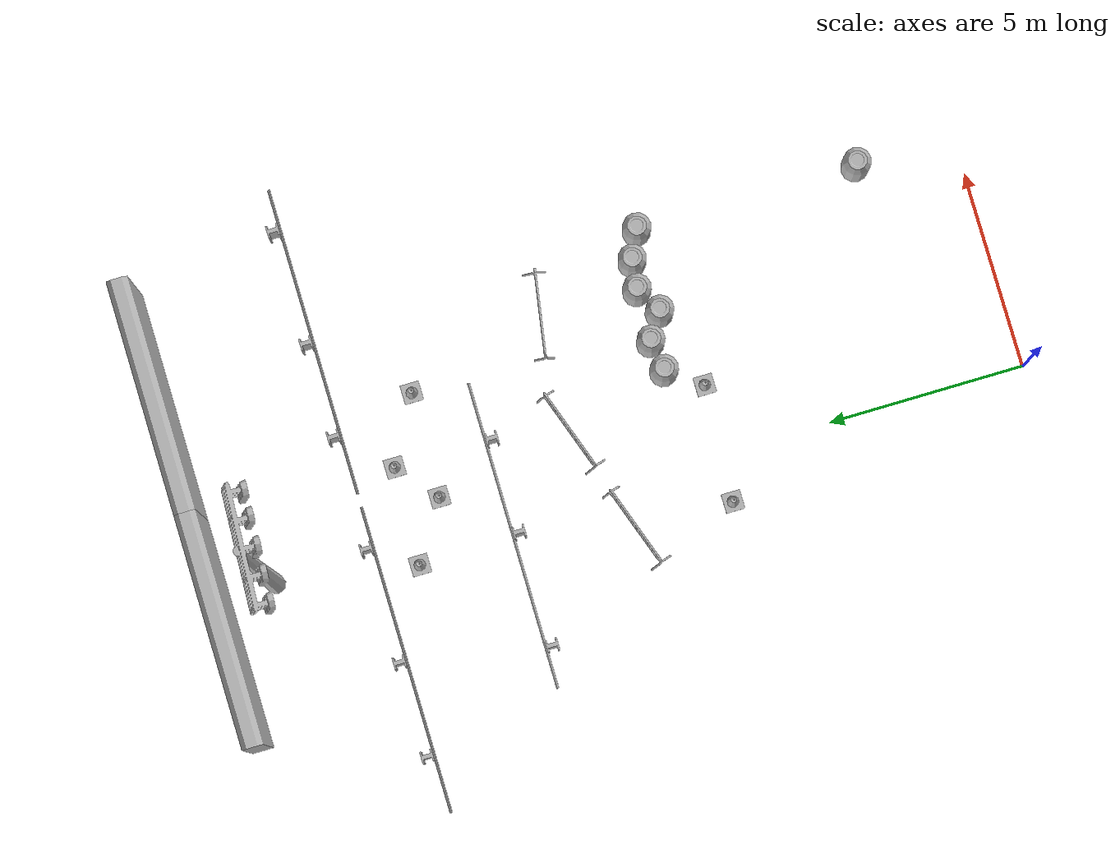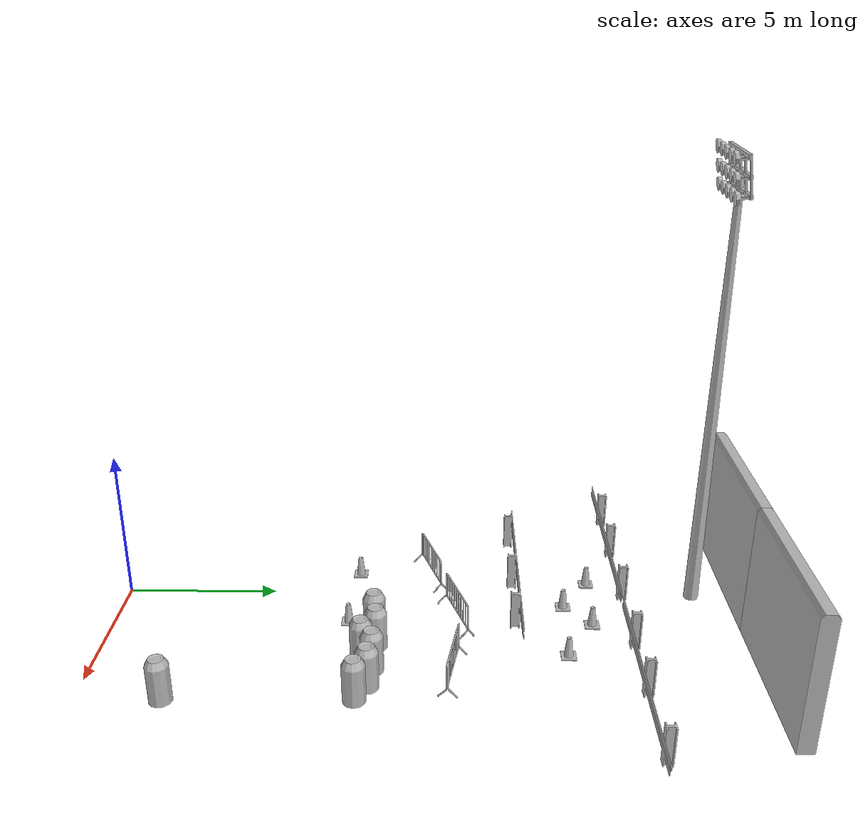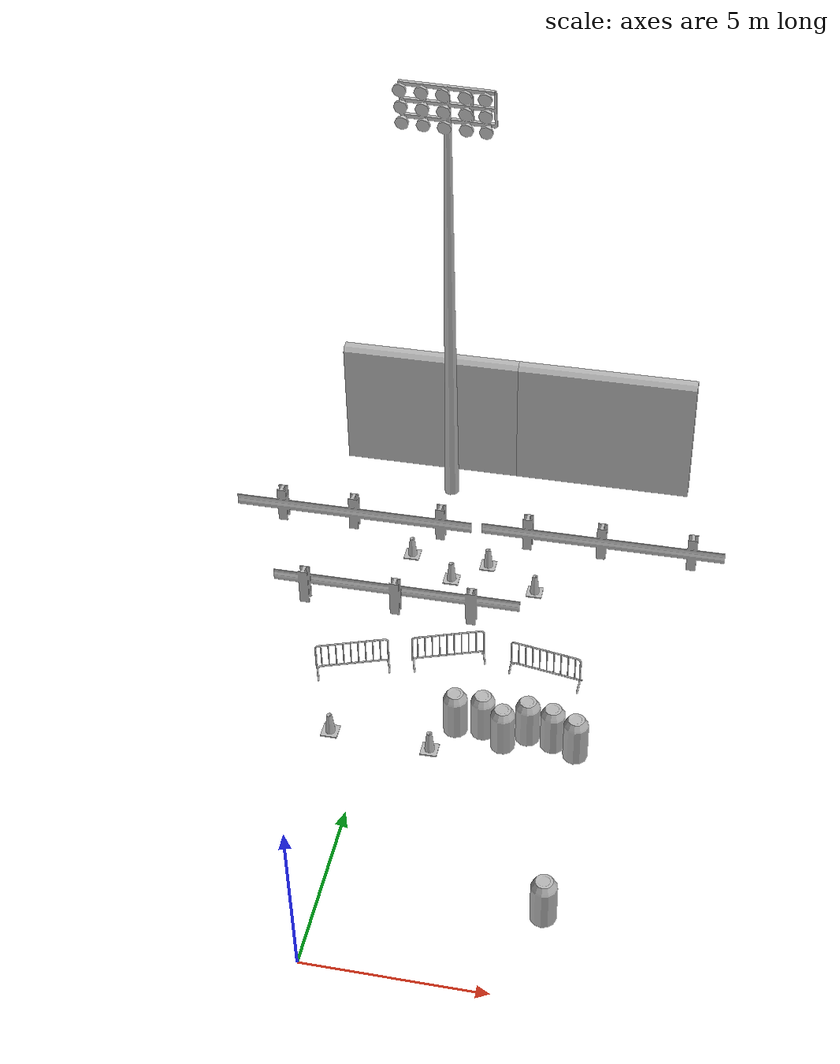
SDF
<sdf version="1.7">
 <world name="default">
  <model name="aws_robomaker_racetrack_CrashworthBucket_01_04">
   <frame name="aws_CrashworthBucket_01::__model__" attached_to="aws_CrashworthBucket_01::body">
    <pose relative_to="__model__">0 0 0 0 -0 0</pose>
   </frame>
   <link name="aws_CrashworthBucket_01::body">
    <pose relative_to="aws_CrashworthBucket_01::__model__">0 0 0 0 -0 0</pose>
    <inertial>
     <mass>5</mass>
     <inertia><ixx>1</ixx><ixy>0</ixy><ixz>0</ixz><iyy>1</iyy><iyz>0</iyz><izz>1</izz></inertia>
    </inertial>
    <visual name="visual">
     <geometry>
      <mesh>
       <uri>file://models/aws_robomaker_racetrack_CrashworthBucket_01/meshes/aws_CrashworthBucket_01_visual.DAE</uri>
      </mesh>
     </geometry>
     <material><shader type="pixel"><normal_map>__default__</normal_map></shader></material>
     <meta><layer>0</layer></meta>
    </visual>
    <collision name="collision_0">
     <geometry>
      <mesh>
       <uri>file://models/aws_robomaker_racetrack_CrashworthBucket_01/meshes/aws_CrashworthBucket_01_collision.DAE</uri>
       <scale>1 1 1</scale>
      </mesh>
     </geometry>
     <surface>
      <friction>
       <ode><mu>1</mu><mu2>1</mu2><fdir1>0 0 0</fdir1><slip1>0</slip1><slip2>0</slip2></ode>
       <torsional>
        <coefficient>1</coefficient>
        <patch_radius>0</patch_radius>
        <surface_radius>0</surface_radius>
        <use_patch_radius>1</use_patch_radius>
        <ode><slip>0</slip></ode>
       </torsional>
      </friction>
      <bounce><restitution_coefficient>0</restitution_coefficient><threshold>1e+06</threshold></bounce>
      <contact>
       <collide_without_contact>0</collide_without_contact>
       <collide_without_contact_bitmask>1</collide_without_contact_bitmask>
       <collide_bitmask>1</collide_bitmask>
       <ode>
        <soft_cfm>0</soft_cfm>
        <soft_erp>0.2</soft_erp>
        <kp>1e+13</kp>
        <kd>1</kd>
        <max_vel>0.01</max_vel>
        <min_depth>0</min_depth>
       </ode>
       <bullet>
        <split_impulse>1</split_impulse>
        <split_impulse_penetration_threshold>-0.01</split_impulse_penetration_threshold>
        <soft_cfm>0</soft_cfm>
        <soft_erp>0.2</soft_erp>
        <kp>1e+13</kp>
        <kd>1</kd>
       </bullet>
      </contact>
     </surface>
    </collision>
   </link>
   <static>1</static>
   <pose>2.35672 8.58743 0.054 0 -0 0.094608</pose>
  </model>
  <model name="aws_robomaker_racetrack_CrashworthBucket_01_05">
   <frame name="aws_CrashworthBucket_01::__model__" attached_to="aws_CrashworthBucket_01::body">
    <pose relative_to="__model__">0 0 0 0 -0 0</pose>
   </frame>
   <link name="aws_CrashworthBucket_01::body">
    <pose relative_to="aws_CrashworthBucket_01::__model__">0 0 0 0 -0 0</pose>
    <inertial>
     <mass>5</mass>
     <inertia><ixx>1</ixx><ixy>0</ixy><ixz>0</ixz><iyy>1</iyy><iyz>0</iyz><izz>1</izz></inertia>
    </inertial>
    <visual name="visual">
     <geometry>
      <mesh>
       <uri>file://models/aws_robomaker_racetrack_CrashworthBucket_01/meshes/aws_CrashworthBucket_01_visual.DAE</uri>
      </mesh>
     </geometry>
     <material><shader type="pixel"><normal_map>__default__</normal_map></shader></material>
     <meta><layer>0</layer></meta>
    </visual>
    <collision name="collision_0">
     <geometry>
      <mesh>
       <uri>file://models/aws_robomaker_racetrack_CrashworthBucket_01/meshes/aws_CrashworthBucket_01_collision.DAE</uri>
       <scale>1 1 1</scale>
      </mesh>
     </geometry>
     <surface>
      <friction>
       <ode><mu>1</mu><mu2>1</mu2><fdir1>0 0 0</fdir1><slip1>0</slip1><slip2>0</slip2></ode>
       <torsional>
        <coefficient>1</coefficient>
        <patch_radius>0</patch_radius>
        <surface_radius>0</surface_radius>
        <use_patch_radius>1</use_patch_radius>
        <ode><slip>0</slip></ode>
       </torsional>
      </friction>
      <bounce><restitution_coefficient>0</restitution_coefficient><threshold>1e+06</threshold></bounce>
      <contact>
       <collide_without_contact>0</collide_without_contact>
       <collide_without_contact_bitmask>1</collide_without_contact_bitmask>
       <collide_bitmask>1</collide_bitmask>
       <ode>
        <soft_cfm>0</soft_cfm>
        <soft_erp>0.2</soft_erp>
        <kp>1e+13</kp>
        <kd>1</kd>
        <max_vel>0.01</max_vel>
        <min_depth>0</min_depth>
       </ode>
       <bullet>
        <split_impulse>1</split_impulse>
        <split_impulse_penetration_threshold>-0.01</split_impulse_penetration_threshold>
        <soft_cfm>0</soft_cfm>
        <soft_erp>0.2</soft_erp>
        <kp>1e+13</kp>
        <kd>1</kd>
       </bullet>
      </contact>
     </surface>
    </collision>
   </link>
   <static>1</static>
   <pose>3.14399 8.69292 0 0 -0 0.292667</pose>
  </model>
  <model name="aws_robomaker_racetrack_CrashworthBucket_01_06">
   <frame name="aws_CrashworthBucket_01::__model__" attached_to="aws_CrashworthBucket_01::body">
    <pose relative_to="__model__">0 0 0 0 -0 0</pose>
   </frame>
   <link name="aws_CrashworthBucket_01::body">
    <pose relative_to="aws_CrashworthBucket_01::__model__">0 0 0 0 -0 0</pose>
    <inertial>
     <mass>5</mass>
     <inertia><ixx>1</ixx><ixy>0</ixy><ixz>0</ixz><iyy>1</iyy><iyz>0</iyz><izz>1</izz></inertia>
    </inertial>
    <visual name="visual">
     <geometry>
      <mesh>
       <uri>file://models/aws_robomaker_racetrack_CrashworthBucket_01/meshes/aws_CrashworthBucket_01_visual.DAE</uri>
      </mesh>
     </geometry>
     <material><shader type="pixel"><normal_map>__default__</normal_map></shader></material>
     <meta><layer>0</layer></meta>
    </visual>
    <collision name="collision_0">
     <geometry>
      <mesh>
       <uri>file://models/aws_robomaker_racetrack_CrashworthBucket_01/meshes/aws_CrashworthBucket_01_collision.DAE</uri>
       <scale>1 1 1</scale>
      </mesh>
     </geometry>
     <surface>
      <friction>
       <ode><mu>1</mu><mu2>1</mu2><fdir1>0 0 0</fdir1><slip1>0</slip1><slip2>0</slip2></ode>
       <torsional>
        <coefficient>1</coefficient>
        <patch_radius>0</patch_radius>
        <surface_radius>0</surface_radius>
        <use_patch_radius>1</use_patch_radius>
        <ode><slip>0</slip></ode>
       </torsional>
      </friction>
      <bounce><restitution_coefficient>0</restitution_coefficient><threshold>1e+06</threshold></bounce>
      <contact>
       <collide_without_contact>0</collide_without_contact>
       <collide_without_contact_bitmask>1</collide_without_contact_bitmask>
       <collide_bitmask>1</collide_bitmask>
       <ode>
        <soft_cfm>0</soft_cfm>
        <soft_erp>0.2</soft_erp>
        <kp>1e+13</kp>
        <kd>1</kd>
        <max_vel>0.01</max_vel>
        <min_depth>0</min_depth>
       </ode>
       <bullet>
        <split_impulse>1</split_impulse>
        <split_impulse_penetration_threshold>-0.01</split_impulse_penetration_threshold>
        <soft_cfm>0</soft_cfm>
        <soft_erp>0.2</soft_erp>
        <kp>1e+13</kp>
        <kd>1</kd>
       </bullet>
      </contact>
     </surface>
    </collision>
   </link>
   <static>1</static>
   <pose>5.18867 8.56895 0 0 0 -0.026658</pose>
  </model>
  <model name="aws_robomaker_racetrack_CrashworthBucket_01_07">
   <frame name="aws_CrashworthBucket_01::__model__" attached_to="aws_CrashworthBucket_01::body">
    <pose relative_to="__model__">0 0 0 0 -0 0</pose>
   </frame>
   <link name="aws_CrashworthBucket_01::body">
    <pose relative_to="aws_CrashworthBucket_01::__model__">0 0 0 0 -0 0</pose>
    <inertial>
     <mass>5</mass>
     <inertia><ixx>1</ixx><ixy>0</ixy><ixz>0</ixz><iyy>1</iyy><iyz>0</iyz><izz>1</izz></inertia>
    </inertial>
    <visual name="visual">
     <geometry>
      <mesh>
       <uri>file://models/aws_robomaker_racetrack_CrashworthBucket_01/meshes/aws_CrashworthBucket_01_visual.DAE</uri>
      </mesh>
     </geometry>
     <material><shader type="pixel"><normal_map>__default__</normal_map></shader></material>
     <meta><layer>0</layer></meta>
    </visual>
    <collision name="collision_0">
     <geometry>
      <mesh>
       <uri>file://models/aws_robomaker_racetrack_CrashworthBucket_01/meshes/aws_CrashworthBucket_01_collision.DAE</uri>
       <scale>1 1 1</scale>
      </mesh>
     </geometry>
     <surface>
      <friction>
       <ode><mu>1</mu><mu2>1</mu2><fdir1>0 0 0</fdir1><slip1>0</slip1><slip2>0</slip2></ode>
       <torsional>
        <coefficient>1</coefficient>
        <patch_radius>0</patch_radius>
        <surface_radius>0</surface_radius>
        <use_patch_radius>1</use_patch_radius>
        <ode><slip>0</slip></ode>
       </torsional>
      </friction>
      <bounce><restitution_coefficient>0</restitution_coefficient><threshold>1e+06</threshold></bounce>
      <contact>
       <collide_without_contact>0</collide_without_contact>
       <collide_without_contact_bitmask>1</collide_without_contact_bitmask>
       <collide_bitmask>1</collide_bitmask>
       <ode>
        <soft_cfm>0</soft_cfm>
        <soft_erp>0.2</soft_erp>
        <kp>1e+13</kp>
        <kd>1</kd>
        <max_vel>0.01</max_vel>
        <min_depth>0</min_depth>
       </ode>
       <bullet>
        <split_impulse>1</split_impulse>
        <split_impulse_penetration_threshold>-0.01</split_impulse_penetration_threshold>
        <soft_cfm>0</soft_cfm>
        <soft_erp>0.2</soft_erp>
        <kp>1e+13</kp>
        <kd>1</kd>
       </bullet>
      </contact>
     </surface>
    </collision>
   </link>
   <static>1</static>
   <pose>5.89383 8.24239 0.054 0 -0 0</pose>
  </model>
  <model name="aws_robomaker_racetrack_CrashworthBucket_01_43">
   <frame name="aws_CrashworthBucket_01::__model__" attached_to="aws_CrashworthBucket_01::body">
    <pose relative_to="__model__">0 0 0 0 -0 0</pose>
   </frame>
   <link name="aws_CrashworthBucket_01::body">
    <pose relative_to="aws_CrashworthBucket_01::__model__">0 0 0 0 -0 0</pose>
    <inertial>
     <mass>5</mass>
     <inertia><ixx>1</ixx><ixy>0</ixy><ixz>0</ixz><iyy>1</iyy><iyz>0</iyz><izz>1</izz></inertia>
    </inertial>
    <visual name="visual">
     <geometry>
      <mesh>
       <uri>file://models/aws_robomaker_racetrack_CrashworthBucket_01/meshes/aws_CrashworthBucket_01_visual.DAE</uri>
      </mesh>
     </geometry>
     <material><shader type="pixel"><normal_map>__default__</normal_map></shader></material>
     <meta><layer>0</layer></meta>
    </visual>
    <collision name="collision_0">
     <geometry>
      <mesh>
       <uri>file://models/aws_robomaker_racetrack_CrashworthBucket_01/meshes/aws_CrashworthBucket_01_collision.DAE</uri>
       <scale>1 1 1</scale>
      </mesh>
     </geometry>
     <surface>
      <friction>
       <ode><mu>1</mu><mu2>1</mu2><fdir1>0 0 0</fdir1><slip1>0</slip1><slip2>0</slip2></ode>
       <torsional>
        <coefficient>1</coefficient>
        <patch_radius>0</patch_radius>
        <surface_radius>0</surface_radius>
        <use_patch_radius>1</use_patch_radius>
        <ode><slip>0</slip></ode>
       </torsional>
      </friction>
      <bounce><restitution_coefficient>0</restitution_coefficient><threshold>1e+06</threshold></bounce>
      <contact>
       <collide_without_contact>0</collide_without_contact>
       <collide_without_contact_bitmask>1</collide_without_contact_bitmask>
       <collide_bitmask>1</collide_bitmask>
       <ode>
        <soft_cfm>0</soft_cfm>
        <soft_erp>0.2</soft_erp>
        <kp>1e+13</kp>
        <kd>1</kd>
        <max_vel>0.01</max_vel>
        <min_depth>0</min_depth>
       </ode>
       <bullet>
        <split_impulse>1</split_impulse>
        <split_impulse_penetration_threshold>-0.01</split_impulse_penetration_threshold>
        <soft_cfm>0</soft_cfm>
        <soft_erp>0.2</soft_erp>
        <kp>1e+13</kp>
        <kd>1</kd>
       </bullet>
      </contact>
     </surface>
    </collision>
   </link>
   <static>1</static>
   <pose>4.45229 8.66174 0.054 0 -0 0.095583</pose>
  </model>
  <model name="aws_robomaker_racetrack_CrashworthBucket_01_46">
   <frame name="aws_CrashworthBucket_01::__model__" attached_to="aws_CrashworthBucket_01::body">
    <pose relative_to="__model__">0 0 0 0 -0 0</pose>
   </frame>
   <link name="aws_CrashworthBucket_01::body">
    <pose relative_to="aws_CrashworthBucket_01::__model__">0 0 0 0 -0 0</pose>
    <inertial>
     <mass>5</mass>
     <inertia><ixx>1</ixx><ixy>0</ixy><ixz>0</ixz><iyy>1</iyy><iyz>0</iyz><izz>1</izz></inertia>
    </inertial>
    <visual name="visual">
     <geometry>
      <mesh>
       <uri>file://models/aws_robomaker_racetrack_CrashworthBucket_01/meshes/aws_CrashworthBucket_01_visual.DAE</uri>
      </mesh>
     </geometry>
     <material><shader type="pixel"><normal_map>__default__</normal_map></shader></material>
     <meta><layer>0</layer></meta>
    </visual>
    <collision name="collision_0">
     <geometry>
      <mesh>
       <uri>file://models/aws_robomaker_racetrack_CrashworthBucket_01/meshes/aws_CrashworthBucket_01_collision.DAE</uri>
       <scale>1 1 1</scale>
      </mesh>
     </geometry>
     <surface>
      <friction>
       <ode><mu>1</mu><mu2>1</mu2><fdir1>0 0 0</fdir1><slip1>0</slip1><slip2>0</slip2></ode>
       <torsional>
        <coefficient>1</coefficient>
        <patch_radius>0</patch_radius>
        <surface_radius>0</surface_radius>
        <use_patch_radius>1</use_patch_radius>
        <ode><slip>0</slip></ode>
       </torsional>
      </friction>
      <bounce><restitution_coefficient>0</restitution_coefficient><threshold>1e+06</threshold></bounce>
      <contact>
       <collide_without_contact>0</collide_without_contact>
       <collide_without_contact_bitmask>1</collide_without_contact_bitmask>
       <collide_bitmask>1</collide_bitmask>
       <ode>
        <soft_cfm>0</soft_cfm>
        <soft_erp>0.2</soft_erp>
        <kp>1e+13</kp>
        <kd>1</kd>
        <max_vel>0.01</max_vel>
        <min_depth>0</min_depth>
       </ode>
       <bullet>
        <split_impulse>1</split_impulse>
        <split_impulse_penetration_threshold>-0.01</split_impulse_penetration_threshold>
        <soft_cfm>0</soft_cfm>
        <soft_erp>0.2</soft_erp>
        <kp>1e+13</kp>
        <kd>1</kd>
       </bullet>
      </contact>
     </surface>
    </collision>
   </link>
   <static>1</static>
   <pose>5.91311 2.58362 0 0 0 -0.010849</pose>
  </model>
  <model name="aws_robomaker_racetrack_CrashworthBucket_01_53">
   <frame name="aws_CrashworthBucket_01::__model__" attached_to="aws_CrashworthBucket_01::body">
    <pose relative_to="__model__">0 0 0 0 -0 0</pose>
   </frame>
   <link name="aws_CrashworthBucket_01::body">
    <pose relative_to="aws_CrashworthBucket_01::__model__">0 0 0 0 -0 0</pose>
    <inertial>
     <mass>5</mass>
     <inertia><ixx>1</ixx><ixy>0</ixy><ixz>0</ixz><iyy>1</iyy><iyz>0</iyz><izz>1</izz></inertia>
    </inertial>
    <visual name="visual">
     <geometry>
      <mesh>
       <uri>file://models/aws_robomaker_racetrack_CrashworthBucket_01/meshes/aws_CrashworthBucket_01_visual.DAE</uri>
      </mesh>
     </geometry>
     <material><shader type="pixel"><normal_map>__default__</normal_map></shader></material>
     <meta><layer>0</layer></meta>
    </visual>
    <collision name="collision_0">
     <geometry>
      <mesh>
       <uri>file://models/aws_robomaker_racetrack_CrashworthBucket_01/meshes/aws_CrashworthBucket_01_collision.DAE</uri>
       <scale>1 1 1</scale>
      </mesh>
     </geometry>
     <surface>
      <friction>
       <ode><mu>1</mu><mu2>1</mu2><fdir1>0 0 0</fdir1><slip1>0</slip1><slip2>0</slip2></ode>
       <torsional>
        <coefficient>1</coefficient>
        <patch_radius>0</patch_radius>
        <surface_radius>0</surface_radius>
        <use_patch_radius>1</use_patch_radius>
        <ode><slip>0</slip></ode>
       </torsional>
      </friction>
      <bounce><restitution_coefficient>0</restitution_coefficient><threshold>1e+06</threshold></bounce>
      <contact>
       <collide_without_contact>0</collide_without_contact>
       <collide_without_contact_bitmask>1</collide_without_contact_bitmask>
       <collide_bitmask>1</collide_bitmask>
       <ode>
        <soft_cfm>0</soft_cfm>
        <soft_erp>0.2</soft_erp>
        <kp>1e+13</kp>
        <kd>1</kd>
        <max_vel>0.01</max_vel>
        <min_depth>0</min_depth>
       </ode>
       <bullet>
        <split_impulse>1</split_impulse>
        <split_impulse_penetration_threshold>-0.01</split_impulse_penetration_threshold>
        <soft_cfm>0</soft_cfm>
        <soft_erp>0.2</soft_erp>
        <kp>1e+13</kp>
        <kd>1</kd>
       </bullet>
      </contact>
     </surface>
    </collision>
   </link>
   <static>1</static>
   <pose>3.7947 8.27498 0 0 0 -0.244875</pose>
  </model>
  <model name="aws_robomaker_racetrack_Fence_01_01">
   <frame name="aws_Fence_01::__model__" attached_to="aws_Fence_01::body">
    <pose relative_to="__model__">0 0 0 0 -0 0</pose>
   </frame>
   <link name="aws_Fence_01::body">
    <pose relative_to="aws_Fence_01::__model__">0 0 0 0 -0 0</pose>
    <inertial>
     <mass>5</mass>
     <inertia><ixx>1</ixx><ixy>0</ixy><ixz>0</ixz><iyy>1</iyy><iyz>0</iyz><izz>1</izz></inertia>
    </inertial>
    <visual name="visual">
     <geometry>
      <mesh><uri>file://models/aws_robomaker_racetrack_Fence_01/meshes/aws_Fence_01_visual.DAE</uri></mesh>
     </geometry>
     <material><shader type="pixel"><normal_map>__default__</normal_map></shader></material>
     <meta><layer>0</layer></meta>
    </visual>
    <collision name="collision_0">
     <geometry>
      <mesh>
       <uri>file://models/aws_robomaker_racetrack_Fence_01/meshes/aws_Fence_01_collision.DAE</uri>
       <scale>1 1 1</scale>
      </mesh>
     </geometry>
     <surface>
      <friction>
       <ode><mu>1</mu><mu2>1</mu2><fdir1>0 0 0</fdir1><slip1>0</slip1><slip2>0</slip2></ode>
       <torsional>
        <coefficient>1</coefficient>
        <patch_radius>0</patch_radius>
        <surface_radius>0</surface_radius>
        <use_patch_radius>1</use_patch_radius>
        <ode><slip>0</slip></ode>
       </torsional>
      </friction>
      <bounce><restitution_coefficient>0</restitution_coefficient><threshold>1e+06</threshold></bounce>
      <contact>
       <collide_without_contact>0</collide_without_contact>
       <collide_without_contact_bitmask>1</collide_without_contact_bitmask>
       <collide_bitmask>1</collide_bitmask>
       <ode>
        <soft_cfm>0</soft_cfm>
        <soft_erp>0.2</soft_erp>
        <kp>1e+13</kp>
        <kd>1</kd>
        <max_vel>0.01</max_vel>
        <min_depth>0</min_depth>
       </ode>
       <bullet>
        <split_impulse>1</split_impulse>
        <split_impulse_penetration_threshold>-0.01</split_impulse_penetration_threshold>
        <soft_cfm>0</soft_cfm>
        <soft_erp>0.2</soft_erp>
        <kp>1e+13</kp>
        <kd>1</kd>
       </bullet>
      </contact>
     </surface>
    </collision>
   </link>
   <static>1</static>
   <pose>-0.500271 13.1587 0 0 0 -1.57272</pose>
  </model>
  <model name="aws_robomaker_racetrack_Fence_01_14">
   <frame name="aws_Fence_01::__model__" attached_to="aws_Fence_01::body">
    <pose relative_to="__model__">0 0 0 0 -0 0</pose>
   </frame>
   <link name="aws_Fence_01::body">
    <pose relative_to="aws_Fence_01::__model__">0 0 0 0 -0 0</pose>
    <inertial>
     <mass>5</mass>
     <inertia><ixx>1</ixx><ixy>0</ixy><ixz>0</ixz><iyy>1</iyy><iyz>0</iyz><izz>1</izz></inertia>
    </inertial>
    <visual name="visual">
     <geometry>
      <mesh><uri>file://models/aws_robomaker_racetrack_Fence_01/meshes/aws_Fence_01_visual.DAE</uri></mesh>
     </geometry>
     <material><shader type="pixel"><normal_map>__default__</normal_map></shader></material>
     <meta><layer>0</layer></meta>
    </visual>
    <collision name="collision_0">
     <geometry>
      <mesh>
       <uri>file://models/aws_robomaker_racetrack_Fence_01/meshes/aws_Fence_01_collision.DAE</uri>
       <scale>1 1 1</scale>
      </mesh>
     </geometry>
     <surface>
      <friction>
       <ode><mu>1</mu><mu2>1</mu2><fdir1>0 0 0</fdir1><slip1>0</slip1><slip2>0</slip2></ode>
       <torsional>
        <coefficient>1</coefficient>
        <patch_radius>0</patch_radius>
        <surface_radius>0</surface_radius>
        <use_patch_radius>1</use_patch_radius>
        <ode><slip>0</slip></ode>
       </torsional>
      </friction>
      <bounce><restitution_coefficient>0</restitution_coefficient><threshold>1e+06</threshold></bounce>
      <contact>
       <collide_without_contact>0</collide_without_contact>
       <collide_without_contact_bitmask>1</collide_without_contact_bitmask>
       <collide_bitmask>1</collide_bitmask>
       <ode>
        <soft_cfm>0</soft_cfm>
        <soft_erp>0.2</soft_erp>
        <kp>1e+13</kp>
        <kd>1</kd>
        <max_vel>0.01</max_vel>
        <min_depth>0</min_depth>
       </ode>
       <bullet>
        <split_impulse>1</split_impulse>
        <split_impulse_penetration_threshold>-0.01</split_impulse_penetration_threshold>
        <soft_cfm>0</soft_cfm>
        <soft_erp>0.2</soft_erp>
        <kp>1e+13</kp>
        <kd>1</kd>
       </bullet>
      </contact>
     </surface>
    </collision>
   </link>
   <static>1</static>
   <pose>-2.67941 16.8189 0 0 -0 1.57158</pose>
  </model>
  <model name="aws_robomaker_racetrack_Fence_01_15">
   <frame name="aws_Fence_01::__model__" attached_to="aws_Fence_01::body">
    <pose relative_to="__model__">0 0 0 0 -0 0</pose>
   </frame>
   <link name="aws_Fence_01::body">
    <pose relative_to="aws_Fence_01::__model__">0 0 0 0 -0 0</pose>
    <inertial>
     <mass>5</mass>
     <inertia><ixx>1</ixx><ixy>0</ixy><ixz>0</ixz><iyy>1</iyy><iyz>0</iyz><izz>1</izz></inertia>
    </inertial>
    <visual name="visual">
     <geometry>
      <mesh><uri>file://models/aws_robomaker_racetrack_Fence_01/meshes/aws_Fence_01_visual.DAE</uri></mesh>
     </geometry>
     <material><shader type="pixel"><normal_map>__default__</normal_map></shader></material>
     <meta><layer>0</layer></meta>
    </visual>
    <collision name="collision_0">
     <geometry>
      <mesh>
       <uri>file://models/aws_robomaker_racetrack_Fence_01/meshes/aws_Fence_01_collision.DAE</uri>
       <scale>1 1 1</scale>
      </mesh>
     </geometry>
     <surface>
      <friction>
       <ode><mu>1</mu><mu2>1</mu2><fdir1>0 0 0</fdir1><slip1>0</slip1><slip2>0</slip2></ode>
       <torsional>
        <coefficient>1</coefficient>
        <patch_radius>0</patch_radius>
        <surface_radius>0</surface_radius>
        <use_patch_radius>1</use_patch_radius>
        <ode><slip>0</slip></ode>
       </torsional>
      </friction>
      <bounce><restitution_coefficient>0</restitution_coefficient><threshold>1e+06</threshold></bounce>
      <contact>
       <collide_without_contact>0</collide_without_contact>
       <collide_without_contact_bitmask>1</collide_without_contact_bitmask>
       <collide_bitmask>1</collide_bitmask>
       <ode>
        <soft_cfm>0</soft_cfm>
        <soft_erp>0.2</soft_erp>
        <kp>1e+13</kp>
        <kd>1</kd>
        <max_vel>0.01</max_vel>
        <min_depth>0</min_depth>
       </ode>
       <bullet>
        <split_impulse>1</split_impulse>
        <split_impulse_penetration_threshold>-0.01</split_impulse_penetration_threshold>
        <soft_cfm>0</soft_cfm>
        <soft_erp>0.2</soft_erp>
        <kp>1e+13</kp>
        <kd>1</kd>
       </bullet>
      </contact>
     </surface>
    </collision>
   </link>
   <static>1</static>
   <pose>5.47501 16.8189 0.054 0 -0 1.57158</pose>
  </model>
  <model name="aws_robomaker_racetrack_Fence_02_05">
   <frame name="aws_Fence_02::__model__" attached_to="aws_Fence_02::body">
    <pose relative_to="__model__">0 0 0 0 -0 0</pose>
   </frame>
   <link name="aws_Fence_02::body">
    <pose relative_to="aws_Fence_02::__model__">0 0 0 0 -0 0</pose>
    <inertial>
     <mass>5</mass>
     <inertia><ixx>9.6</ixx><ixy>0</ixy><ixz>0</ixz><iyy>8.2</iyy><iyz>0</iyz><izz>2.1</izz></inertia>
    </inertial>
    <visual name="visual">
     <geometry>
      <mesh><uri>file://models/aws_robomaker_racetrack_Fence_02/meshes/aws_Fence_02_visual.DAE</uri></mesh>
     </geometry>
     <material><shader type="pixel"><normal_map>__default__</normal_map></shader></material>
     <meta><layer>0</layer></meta>
    </visual>
    <collision name="collision_0">
     <geometry>
      <mesh>
       <uri>file://models/aws_robomaker_racetrack_Fence_02/meshes/aws_Fence_02_collision.DAE</uri>
       <scale>1 1 1</scale>
      </mesh>
     </geometry>
     <surface>
      <friction>
       <ode><mu>1</mu><mu2>1</mu2><fdir1>0 0 0</fdir1><slip1>0</slip1><slip2>0</slip2></ode>
       <torsional>
        <coefficient>1</coefficient>
        <patch_radius>0</patch_radius>
        <surface_radius>0</surface_radius>
        <use_patch_radius>1</use_patch_radius>
        <ode><slip>0</slip></ode>
       </torsional>
      </friction>
      <bounce><restitution_coefficient>0</restitution_coefficient><threshold>1e+06</threshold></bounce>
      <contact>
       <collide_without_contact>0</collide_without_contact>
       <collide_without_contact_bitmask>1</collide_without_contact_bitmask>
       <collide_bitmask>1</collide_bitmask>
      </contact>
     </surface>
    </collision>
   </link>
   <static>1</static>
   <pose>4.57205 11.1353 0 0 0 -1.73608</pose>
  </model>
  <model name="aws_robomaker_racetrack_Fence_02_07">
   <frame name="aws_Fence_02::__model__" attached_to="aws_Fence_02::body">
    <pose relative_to="__model__">0 0 0 0 -0 0</pose>
   </frame>
   <link name="aws_Fence_02::body">
    <pose relative_to="aws_Fence_02::__model__">0 0 0 0 -0 0</pose>
    <inertial>
     <mass>5</mass>
     <inertia><ixx>9.6</ixx><ixy>0</ixy><ixz>0</ixz><iyy>8.2</iyy><iyz>0</iyz><izz>2.1</izz></inertia>
    </inertial>
    <visual name="visual">
     <geometry>
      <mesh><uri>file://models/aws_robomaker_racetrack_Fence_02/meshes/aws_Fence_02_visual.DAE</uri></mesh>
     </geometry>
     <material><shader type="pixel"><normal_map>__default__</normal_map></shader></material>
     <meta><layer>0</layer></meta>
    </visual>
    <collision name="collision_0">
     <geometry>
      <mesh>
       <uri>file://models/aws_robomaker_racetrack_Fence_02/meshes/aws_Fence_02_collision.DAE</uri>
       <scale>1 1 1</scale>
      </mesh>
     </geometry>
     <surface>
      <friction>
       <ode><mu>1</mu><mu2>1</mu2><fdir1>0 0 0</fdir1><slip1>0</slip1><slip2>0</slip2></ode>
       <torsional>
        <coefficient>1</coefficient>
        <patch_radius>0</patch_radius>
        <surface_radius>0</surface_radius>
        <use_patch_radius>1</use_patch_radius>
        <ode><slip>0</slip></ode>
       </torsional>
      </friction>
      <bounce><restitution_coefficient>0</restitution_coefficient><threshold>1e+06</threshold></bounce>
      <contact>
       <collide_without_contact>0</collide_without_contact>
       <collide_without_contact_bitmask>1</collide_without_contact_bitmask>
       <collide_bitmask>1</collide_bitmask>
      </contact>
     </surface>
    </collision>
   </link>
   <static>1</static>
   <pose>1.60246 11.2143 0 0 -0 1.90339</pose>
  </model>
  <model name="aws_robomaker_racetrack_Fence_02_08">
   <frame name="aws_Fence_02::__model__" attached_to="aws_Fence_02::body">
    <pose relative_to="__model__">0 0 0 0 -0 0</pose>
   </frame>
   <link name="aws_Fence_02::body">
    <pose relative_to="aws_Fence_02::__model__">0 0 0 0 -0 0</pose>
    <inertial>
     <mass>5</mass>
     <inertia><ixx>9.6</ixx><ixy>0</ixy><ixz>0</ixz><iyy>8.2</iyy><iyz>0</iyz><izz>2.1</izz></inertia>
    </inertial>
    <visual name="visual">
     <geometry>
      <mesh><uri>file://models/aws_robomaker_racetrack_Fence_02/meshes/aws_Fence_02_visual.DAE</uri></mesh>
     </geometry>
     <material><shader type="pixel"><normal_map>__default__</normal_map></shader></material>
     <meta><layer>0</layer></meta>
    </visual>
    <collision name="collision_0">
     <geometry>
      <mesh>
       <uri>file://models/aws_robomaker_racetrack_Fence_02/meshes/aws_Fence_02_collision.DAE</uri>
       <scale>1 1 1</scale>
      </mesh>
     </geometry>
     <surface>
      <friction>
       <ode><mu>1</mu><mu2>1</mu2><fdir1>0 0 0</fdir1><slip1>0</slip1><slip2>0</slip2></ode>
       <torsional>
        <coefficient>1</coefficient>
        <patch_radius>0</patch_radius>
        <surface_radius>0</surface_radius>
        <use_patch_radius>1</use_patch_radius>
        <ode><slip>0</slip></ode>
       </torsional>
      </friction>
      <bounce><restitution_coefficient>0</restitution_coefficient><threshold>1e+06</threshold></bounce>
      <contact>
       <collide_without_contact>0</collide_without_contact>
       <collide_without_contact_bitmask>1</collide_without_contact_bitmask>
       <collide_bitmask>1</collide_bitmask>
      </contact>
     </surface>
    </collision>
   </link>
   <static>1</static>
   <pose>-1.13 10.3272 0 0 -0 1.90339</pose>
  </model>
  <model name="aws_robomaker_racetrack_TrafficCone_01_05">
   <frame name="aws_TrafficCone_01::__model__" attached_to="aws_TrafficCone_01::body">
    <pose relative_to="__model__">0 0 0 0 -0 0</pose>
   </frame>
   <link name="aws_TrafficCone_01::body">
    <pose relative_to="aws_TrafficCone_01::__model__">0 0 0 0 -0 0</pose>
    <inertial>
     <mass>0.5</mass>
     <inertia><ixx>1</ixx><ixy>0</ixy><ixz>0</ixz><iyy>1</iyy><iyz>0</iyz><izz>1</izz></inertia>
    </inertial>
    <visual name="visual">
     <geometry>
      <mesh>
       <uri>file://models/aws_robomaker_racetrack_TrafficCone_01/meshes/aws_TrafficCone_01_visual.DAE</uri>
      </mesh>
     </geometry>
     <material><shader type="pixel"><normal_map>__default__</normal_map></shader></material>
     <meta><layer>0</layer></meta>
    </visual>
    <collision name="collision_0">
     <geometry>
      <mesh>
       <uri>file://models/aws_robomaker_racetrack_TrafficCone_01/meshes/aws_TrafficCone_01_coliision.DAE</uri>
       <scale>1 1 1</scale>
      </mesh>
     </geometry>
     <surface>
      <friction>
       <ode><mu>1</mu><mu2>1</mu2><fdir1>0 0 0</fdir1><slip1>0</slip1><slip2>0</slip2></ode>
       <torsional>
        <coefficient>1</coefficient>
        <patch_radius>0</patch_radius>
        <surface_radius>0</surface_radius>
        <use_patch_radius>1</use_patch_radius>
        <ode><slip>0</slip></ode>
       </torsional>
      </friction>
      <bounce><restitution_coefficient>0</restitution_coefficient><threshold>1e+06</threshold></bounce>
      <contact>
       <collide_without_contact>0</collide_without_contact>
       <collide_without_contact_bitmask>1</collide_without_contact_bitmask>
       <collide_bitmask>1</collide_bitmask>
       <ode>
        <soft_cfm>0</soft_cfm>
        <soft_erp>0.2</soft_erp>
        <kp>1e+13</kp>
        <kd>1</kd>
        <max_vel>0.01</max_vel>
        <min_depth>0</min_depth>
       </ode>
       <bullet>
        <split_impulse>1</split_impulse>
        <split_impulse_penetration_threshold>-0.01</split_impulse_penetration_threshold>
        <soft_cfm>0</soft_cfm>
        <soft_erp>0.2</soft_erp>
        <kp>1e+13</kp>
        <kd>1</kd>
       </bullet>
      </contact>
     </surface>
    </collision>
   </link>
   <static>1</static>
   <pose>3.64383 14.6988 0.071138 0 -0 0</pose>
  </model>
  <model name="aws_robomaker_racetrack_TrafficCone_01_06">
   <frame name="aws_TrafficCone_01::__model__" attached_to="aws_TrafficCone_01::body">
    <pose relative_to="__model__">0 0 0 0 -0 0</pose>
   </frame>
   <link name="aws_TrafficCone_01::body">
    <pose relative_to="aws_TrafficCone_01::__model__">0 0 0 0 -0 0</pose>
    <inertial>
     <mass>0.5</mass>
     <inertia><ixx>1</ixx><ixy>0</ixy><ixz>0</ixz><iyy>1</iyy><iyz>0</iyz><izz>1</izz></inertia>
    </inertial>
    <visual name="visual">
     <geometry>
      <mesh>
       <uri>file://models/aws_robomaker_racetrack_TrafficCone_01/meshes/aws_TrafficCone_01_visual.DAE</uri>
      </mesh>
     </geometry>
     <material><shader type="pixel"><normal_map>__default__</normal_map></shader></material>
     <meta><layer>0</layer></meta>
    </visual>
    <collision name="collision_0">
     <geometry>
      <mesh>
       <uri>file://models/aws_robomaker_racetrack_TrafficCone_01/meshes/aws_TrafficCone_01_coliision.DAE</uri>
       <scale>1 1 1</scale>
      </mesh>
     </geometry>
     <surface>
      <friction>
       <ode><mu>1</mu><mu2>1</mu2><fdir1>0 0 0</fdir1><slip1>0</slip1><slip2>0</slip2></ode>
       <torsional>
        <coefficient>1</coefficient>
        <patch_radius>0</patch_radius>
        <surface_radius>0</surface_radius>
        <use_patch_radius>1</use_patch_radius>
        <ode><slip>0</slip></ode>
       </torsional>
      </friction>
      <bounce><restitution_coefficient>0</restitution_coefficient><threshold>1e+06</threshold></bounce>
      <contact>
       <collide_without_contact>0</collide_without_contact>
       <collide_without_contact_bitmask>1</collide_without_contact_bitmask>
       <collide_bitmask>1</collide_bitmask>
       <ode>
        <soft_cfm>0</soft_cfm>
        <soft_erp>0.2</soft_erp>
        <kp>1e+13</kp>
        <kd>1</kd>
        <max_vel>0.01</max_vel>
        <min_depth>0</min_depth>
       </ode>
       <bullet>
        <split_impulse>1</split_impulse>
        <split_impulse_penetration_threshold>-0.01</split_impulse_penetration_threshold>
        <soft_cfm>0</soft_cfm>
        <soft_erp>0.2</soft_erp>
        <kp>1e+13</kp>
        <kd>1</kd>
       </bullet>
      </contact>
     </surface>
    </collision>
   </link>
   <static>1</static>
   <pose>1.9841 15.6226 0.094479 0 -0 0</pose>
  </model>
  <model name="aws_robomaker_racetrack_TrafficCone_01_07">
   <frame name="aws_TrafficCone_01::__model__" attached_to="aws_TrafficCone_01::body">
    <pose relative_to="__model__">0 0 0 0 -0 0</pose>
   </frame>
   <link name="aws_TrafficCone_01::body">
    <pose relative_to="aws_TrafficCone_01::__model__">0 0 0 0 -0 0</pose>
    <inertial>
     <mass>0.5</mass>
     <inertia><ixx>1</ixx><ixy>0</ixy><ixz>0</ixz><iyy>1</iyy><iyz>0</iyz><izz>1</izz></inertia>
    </inertial>
    <visual name="visual">
     <geometry>
      <mesh>
       <uri>file://models/aws_robomaker_racetrack_TrafficCone_01/meshes/aws_TrafficCone_01_visual.DAE</uri>
      </mesh>
     </geometry>
     <material><shader type="pixel"><normal_map>__default__</normal_map></shader></material>
     <meta><layer>0</layer></meta>
    </visual>
    <collision name="collision_0">
     <geometry>
      <mesh>
       <uri>file://models/aws_robomaker_racetrack_TrafficCone_01/meshes/aws_TrafficCone_01_coliision.DAE</uri>
       <scale>1 1 1</scale>
      </mesh>
     </geometry>
     <surface>
      <friction>
       <ode><mu>1</mu><mu2>1</mu2><fdir1>0 0 0</fdir1><slip1>0</slip1><slip2>0</slip2></ode>
       <torsional>
        <coefficient>1</coefficient>
        <patch_radius>0</patch_radius>
        <surface_radius>0</surface_radius>
        <use_patch_radius>1</use_patch_radius>
        <ode><slip>0</slip></ode>
       </torsional>
      </friction>
      <bounce><restitution_coefficient>0</restitution_coefficient><threshold>1e+06</threshold></bounce>
      <contact>
       <collide_without_contact>0</collide_without_contact>
       <collide_without_contact_bitmask>1</collide_without_contact_bitmask>
       <collide_bitmask>1</collide_bitmask>
       <ode>
        <soft_cfm>0</soft_cfm>
        <soft_erp>0.2</soft_erp>
        <kp>1e+13</kp>
        <kd>1</kd>
        <max_vel>0.01</max_vel>
        <min_depth>0</min_depth>
       </ode>
       <bullet>
        <split_impulse>1</split_impulse>
        <split_impulse_penetration_threshold>-0.01</split_impulse_penetration_threshold>
        <soft_cfm>0</soft_cfm>
        <soft_erp>0.2</soft_erp>
        <kp>1e+13</kp>
        <kd>1</kd>
       </bullet>
      </contact>
     </surface>
    </collision>
   </link>
   <static>1</static>
   <pose>0.965633 14.7707 0.095257 0 -0 0</pose>
  </model>
  <model name="aws_robomaker_racetrack_TrafficCone_01_09">
   <frame name="aws_TrafficCone_01::__model__" attached_to="aws_TrafficCone_01::body">
    <pose relative_to="__model__">0 0 0 0 -0 0</pose>
   </frame>
   <link name="aws_TrafficCone_01::body">
    <pose relative_to="aws_TrafficCone_01::__model__">0 0 0 0 -0 0</pose>
    <inertial>
     <mass>0.5</mass>
     <inertia><ixx>1</ixx><ixy>0</ixy><ixz>0</ixz><iyy>1</iyy><iyz>0</iyz><izz>1</izz></inertia>
    </inertial>
    <visual name="visual">
     <geometry>
      <mesh>
       <uri>file://models/aws_robomaker_racetrack_TrafficCone_01/meshes/aws_TrafficCone_01_visual.DAE</uri>
      </mesh>
     </geometry>
     <material><shader type="pixel"><normal_map>__default__</normal_map></shader></material>
     <meta><layer>0</layer></meta>
    </visual>
    <collision name="collision_0">
     <geometry>
      <mesh>
       <uri>file://models/aws_robomaker_racetrack_TrafficCone_01/meshes/aws_TrafficCone_01_coliision.DAE</uri>
       <scale>1 1 1</scale>
      </mesh>
     </geometry>
     <surface>
      <friction>
       <ode><mu>1</mu><mu2>1</mu2><fdir1>0 0 0</fdir1><slip1>0</slip1><slip2>0</slip2></ode>
       <torsional>
        <coefficient>1</coefficient>
        <patch_radius>0</patch_radius>
        <surface_radius>0</surface_radius>
        <use_patch_radius>1</use_patch_radius>
        <ode><slip>0</slip></ode>
       </torsional>
      </friction>
      <bounce><restitution_coefficient>0</restitution_coefficient><threshold>1e+06</threshold></bounce>
      <contact>
       <collide_without_contact>0</collide_without_contact>
       <collide_without_contact_bitmask>1</collide_without_contact_bitmask>
       <collide_bitmask>1</collide_bitmask>
       <ode>
        <soft_cfm>0</soft_cfm>
        <soft_erp>0.2</soft_erp>
        <kp>1e+13</kp>
        <kd>1</kd>
        <max_vel>0.01</max_vel>
        <min_depth>0</min_depth>
       </ode>
       <bullet>
        <split_impulse>1</split_impulse>
        <split_impulse_penetration_threshold>-0.01</split_impulse_penetration_threshold>
        <soft_cfm>0</soft_cfm>
        <soft_erp>0.2</soft_erp>
        <kp>1e+13</kp>
        <kd>1</kd>
       </bullet>
      </contact>
     </surface>
    </collision>
   </link>
   <static>1</static>
   <pose>-0.506673 15.7031 0.086148 0 -0 0</pose>
  </model>
  <model name="aws_robomaker_racetrack_TrafficCone_01_11">
   <frame name="aws_TrafficCone_01::__model__" attached_to="aws_TrafficCone_01::body">
    <pose relative_to="__model__">0 0 0 0 -0 0</pose>
   </frame>
   <link name="aws_TrafficCone_01::body">
    <pose relative_to="aws_TrafficCone_01::__model__">0 0 0 0 -0 0</pose>
    <inertial>
     <mass>0.5</mass>
     <inertia><ixx>1</ixx><ixy>0</ixy><ixz>0</ixz><iyy>1</iyy><iyz>0</iyz><izz>1</izz></inertia>
    </inertial>
    <visual name="visual">
     <geometry>
      <mesh>
       <uri>file://models/aws_robomaker_racetrack_TrafficCone_01/meshes/aws_TrafficCone_01_visual.DAE</uri>
      </mesh>
     </geometry>
     <material><shader type="pixel"><normal_map>__default__</normal_map></shader></material>
     <meta><layer>0</layer></meta>
    </visual>
    <collision name="collision_0">
     <geometry>
      <mesh>
       <uri>file://models/aws_robomaker_racetrack_TrafficCone_01/meshes/aws_TrafficCone_01_coliision.DAE</uri>
       <scale>1 1 1</scale>
      </mesh>
     </geometry>
     <surface>
      <friction>
       <ode><mu>1</mu><mu2>1</mu2><fdir1>0 0 0</fdir1><slip1>0</slip1><slip2>0</slip2></ode>
       <torsional>
        <coefficient>1</coefficient>
        <patch_radius>0</patch_radius>
        <surface_radius>0</surface_radius>
        <use_patch_radius>1</use_patch_radius>
        <ode><slip>0</slip></ode>
       </torsional>
      </friction>
      <bounce><restitution_coefficient>0</restitution_coefficient><threshold>1e+06</threshold></bounce>
      <contact>
       <collide_without_contact>0</collide_without_contact>
       <collide_without_contact_bitmask>1</collide_without_contact_bitmask>
       <collide_bitmask>1</collide_bitmask>
       <ode>
        <soft_cfm>0</soft_cfm>
        <soft_erp>0.2</soft_erp>
        <kp>1e+13</kp>
        <kd>1</kd>
        <max_vel>0.01</max_vel>
        <min_depth>0</min_depth>
       </ode>
       <bullet>
        <split_impulse>1</split_impulse>
        <split_impulse_penetration_threshold>-0.01</split_impulse_penetration_threshold>
        <soft_cfm>0</soft_cfm>
        <soft_erp>0.2</soft_erp>
        <kp>1e+13</kp>
        <kd>1</kd>
       </bullet>
      </contact>
     </surface>
    </collision>
   </link>
   <static>1</static>
   <pose>-1.18613 7.84487 0 0 -0 0</pose>
  </model>
  <model name="aws_robomaker_racetrack_TrafficCone_01_13">
   <frame name="aws_TrafficCone_01::__model__" attached_to="aws_TrafficCone_01::body">
    <pose relative_to="__model__">0 0 0 0 -0 0</pose>
   </frame>
   <link name="aws_TrafficCone_01::body">
    <pose relative_to="aws_TrafficCone_01::__model__">0 0 0 0 -0 0</pose>
    <inertial>
     <mass>0.5</mass>
     <inertia><ixx>1</ixx><ixy>0</ixy><ixz>0</ixz><iyy>1</iyy><iyz>0</iyz><izz>1</izz></inertia>
    </inertial>
    <visual name="visual">
     <geometry>
      <mesh>
       <uri>file://models/aws_robomaker_racetrack_TrafficCone_01/meshes/aws_TrafficCone_01_visual.DAE</uri>
      </mesh>
     </geometry>
     <material><shader type="pixel"><normal_map>__default__</normal_map></shader></material>
     <meta><layer>0</layer></meta>
    </visual>
    <collision name="collision_0">
     <geometry>
      <mesh>
       <uri>file://models/aws_robomaker_racetrack_TrafficCone_01/meshes/aws_TrafficCone_01_coliision.DAE</uri>
       <scale>1 1 1</scale>
      </mesh>
     </geometry>
     <surface>
      <friction>
       <ode><mu>1</mu><mu2>1</mu2><fdir1>0 0 0</fdir1><slip1>0</slip1><slip2>0</slip2></ode>
       <torsional>
        <coefficient>1</coefficient>
        <patch_radius>0</patch_radius>
        <surface_radius>0</surface_radius>
        <use_patch_radius>1</use_patch_radius>
        <ode><slip>0</slip></ode>
       </torsional>
      </friction>
      <bounce><restitution_coefficient>0</restitution_coefficient><threshold>1e+06</threshold></bounce>
      <contact>
       <collide_without_contact>0</collide_without_contact>
       <collide_without_contact_bitmask>1</collide_without_contact_bitmask>
       <collide_bitmask>1</collide_bitmask>
       <ode>
        <soft_cfm>0</soft_cfm>
        <soft_erp>0.2</soft_erp>
        <kp>1e+13</kp>
        <kd>1</kd>
        <max_vel>0.01</max_vel>
        <min_depth>0</min_depth>
       </ode>
       <bullet>
        <split_impulse>1</split_impulse>
        <split_impulse_penetration_threshold>-0.01</split_impulse_penetration_threshold>
        <soft_cfm>0</soft_cfm>
        <soft_erp>0.2</soft_erp>
        <kp>1e+13</kp>
        <kd>1</kd>
       </bullet>
      </contact>
     </surface>
    </collision>
   </link>
   <static>1</static>
   <pose>1.78217 7.69024 0 0 -0 0</pose>
  </model>
  <model name="aws_robomaker_racetrack_Light_01_01">
   <frame name="aws_Light_01::__model__" attached_to="aws_Light_01::body">
    <pose relative_to="__model__">0 0 0 0 -0 0</pose>
   </frame>
   <link name="aws_Light_01::body">
    <pose relative_to="aws_Light_01::__model__">0 0 0 0 -0 0</pose>
    <inertial>
     <mass>100</mass>
     <inertia><ixx>1</ixx><ixy>0</ixy><ixz>0</ixz><iyy>1</iyy><iyz>0</iyz><izz>1</izz></inertia>
    </inertial>
    <visual name="visual">
     <geometry>
      <mesh><uri>file://models/aws_robomaker_racetrack_Light_01/meshes/aws_Light_01_visual.DAE</uri></mesh>
     </geometry>
     <material><shader type="pixel"><normal_map>__default__</normal_map></shader></material>
     <meta><layer>0</layer></meta>
    </visual>
    <collision name="collision_0">
     <geometry>
      <mesh>
       <uri>file://models/aws_robomaker_racetrack_Light_01/meshes/aws_Light_01_collision.DAE</uri>
       <scale>1 1 1</scale>
      </mesh>
     </geometry>
     <surface>
      <friction>
       <ode><mu>1</mu><mu2>1</mu2><fdir1>0 0 0</fdir1><slip1>0</slip1><slip2>0</slip2></ode>
       <torsional>
        <coefficient>1</coefficient>
        <patch_radius>0</patch_radius>
        <surface_radius>0</surface_radius>
        <use_patch_radius>1</use_patch_radius>
        <ode><slip>0</slip></ode>
       </torsional>
      </friction>
      <bounce><restitution_coefficient>0</restitution_coefficient><threshold>1e+06</threshold></bounce>
      <contact>
       <collide_without_contact>0</collide_without_contact>
       <collide_without_contact_bitmask>1</collide_without_contact_bitmask>
       <collide_bitmask>1</collide_bitmask>
       <ode>
        <soft_cfm>0</soft_cfm>
        <soft_erp>0.2</soft_erp>
        <kp>1e+13</kp>
        <kd>1</kd>
        <max_vel>0.01</max_vel>
        <min_depth>0</min_depth>
       </ode>
       <bullet>
        <split_impulse>1</split_impulse>
        <split_impulse_penetration_threshold>-0.01</split_impulse_penetration_threshold>
        <soft_cfm>0</soft_cfm>
        <soft_erp>0.2</soft_erp>
        <kp>1e+13</kp>
        <kd>1</kd>
       </bullet>
      </contact>
     </surface>
    </collision>
   </link>
   <static>1</static>
   <pose>0.041158 19.0887 0 0 -0 3.09146</pose>
  </model>
  <model name="aws_robomaker_racetrack_Wall_01_01">
   <frame name="aws_Wall_01::__model__" attached_to="aws_Wall_01::body">
    <pose relative_to="__model__">0 0 0 0 -0 0</pose>
   </frame>
   <link name="aws_Wall_01::body">
    <pose relative_to="aws_Wall_01::__model__">0 0 0 0 -0 0</pose>
    <inertial>
     <mass>500</mass>
     <inertia><ixx>1</ixx><ixy>0</ixy><ixz>0</ixz><iyy>1</iyy><iyz>0</iyz><izz>1</izz></inertia>
    </inertial>
    <visual name="visual">
     <geometry>
      <mesh>
       <uri>file://models/aws_robomaker_racetrack_Wall_01/meshes/aws_Wall_01_visual.DAE</uri>
       <scale>2.59853 2.59853 2.59853</scale>
      </mesh>
     </geometry>
     <material><shader type="pixel"><normal_map>__default__</normal_map></shader></material>
     <meta><layer>1</layer></meta>
    </visual>
    <collision name="collision_0">
     <geometry>
      <mesh>
       <uri>file://models/aws_robomaker_racetrack_Wall_01/meshes/aws_Wall_01_collision.DAE</uri>
       <scale>2.59853 2.59853 2.59853</scale>
      </mesh>
     </geometry>
     <surface>
      <friction>
       <ode><mu>1</mu><mu2>1</mu2><fdir1>0 0 0</fdir1><slip1>0</slip1><slip2>0</slip2></ode>
       <torsional>
        <coefficient>1</coefficient>
        <patch_radius>0</patch_radius>
        <surface_radius>0</surface_radius>
        <use_patch_radius>1</use_patch_radius>
        <ode><slip>0</slip></ode>
       </torsional>
      </friction>
      <bounce><restitution_coefficient>0</restitution_coefficient><threshold>1e+06</threshold></bounce>
      <contact>
       <collide_without_contact>0</collide_without_contact>
       <collide_without_contact_bitmask>1</collide_without_contact_bitmask>
       <collide_bitmask>1</collide_bitmask>
       <ode>
        <soft_cfm>0</soft_cfm>
        <soft_erp>0.2</soft_erp>
        <kp>1e+13</kp>
        <kd>1</kd>
        <max_vel>0.01</max_vel>
        <min_depth>0</min_depth>
       </ode>
       <bullet>
        <split_impulse>1</split_impulse>
        <split_impulse_penetration_threshold>-0.01</split_impulse_penetration_threshold>
        <soft_cfm>0</soft_cfm>
        <soft_erp>0.2</soft_erp>
        <kp>1e+13</kp>
        <kd>1</kd>
       </bullet>
      </contact>
     </surface>
    </collision>
   </link>
   <static>1</static>
   <pose>4.94795 20.6846 0 0 -0 0</pose>
  </model>
  <model name="aws_robomaker_racetrack_Wall_01_02">
   <frame name="aws_Wall_01::__model__" attached_to="aws_Wall_01::body">
    <pose relative_to="__model__">0 0 0 0 -0 0</pose>
   </frame>
   <link name="aws_Wall_01::body">
    <pose relative_to="aws_Wall_01::__model__">0 0 0 0 -0 0</pose>
    <inertial>
     <mass>500</mass>
     <inertia><ixx>1</ixx><ixy>0</ixy><ixz>0</ixz><iyy>1</iyy><iyz>0</iyz><izz>1</izz></inertia>
    </inertial>
    <visual name="visual">
     <geometry>
      <mesh>
       <uri>file://models/aws_robomaker_racetrack_Wall_01/meshes/aws_Wall_01_visual.DAE</uri>
       <scale>2.59853 2.59853 2.59853</scale>
      </mesh>
     </geometry>
     <material><shader type="pixel"><normal_map>__default__</normal_map></shader></material>
     <meta><layer>1</layer></meta>
    </visual>
    <collision name="collision_0">
     <geometry>
      <mesh>
       <uri>file://models/aws_robomaker_racetrack_Wall_01/meshes/aws_Wall_01_collision.DAE</uri>
       <scale>2.59853 2.59853 2.59853</scale>
      </mesh>
     </geometry>
     <surface>
      <friction>
       <ode><mu>1</mu><mu2>1</mu2><fdir1>0 0 0</fdir1><slip1>0</slip1><slip2>0</slip2></ode>
       <torsional>
        <coefficient>1</coefficient>
        <patch_radius>0</patch_radius>
        <surface_radius>0</surface_radius>
        <use_patch_radius>1</use_patch_radius>
        <ode><slip>0</slip></ode>
       </torsional>
      </friction>
      <bounce><restitution_coefficient>0</restitution_coefficient><threshold>1e+06</threshold></bounce>
      <contact>
       <collide_without_contact>0</collide_without_contact>
       <collide_without_contact_bitmask>1</collide_without_contact_bitmask>
       <collide_bitmask>1</collide_bitmask>
       <ode>
        <soft_cfm>0</soft_cfm>
        <soft_erp>0.2</soft_erp>
        <kp>1e+13</kp>
        <kd>1</kd>
        <max_vel>0.01</max_vel>
        <min_depth>0</min_depth>
       </ode>
       <bullet>
        <split_impulse>1</split_impulse>
        <split_impulse_penetration_threshold>-0.01</split_impulse_penetration_threshold>
        <soft_cfm>0</soft_cfm>
        <soft_erp>0.2</soft_erp>
        <kp>1e+13</kp>
        <kd>1</kd>
       </bullet>
      </contact>
     </surface>
    </collision>
   </link>
   <static>1</static>
   <pose>-0.883158 20.684 0 0 -0 0</pose>
  </model>
  <model name="ground_plane">
   <pose>0 0 -1.67319e+06 0 -0 0</pose>
   <link name="link">
    <pose>0 0 -1 0 -0 0</pose>
    <inertial>
     <inertia><ixx>1</ixx><ixy>0</ixy><ixz>0</ixz><iyy>1</iyy><iyz>0</iyz><izz>1</izz></inertia>
     <mass>1</mass>
    </inertial>
    <velocity>0 0 0 0 -0 0</velocity>
    <acceleration>0 0 0 0 -0 0</acceleration>
   </link>
   <scale>1 1 1</scale>
  </model>
 </world>
</sdf>
